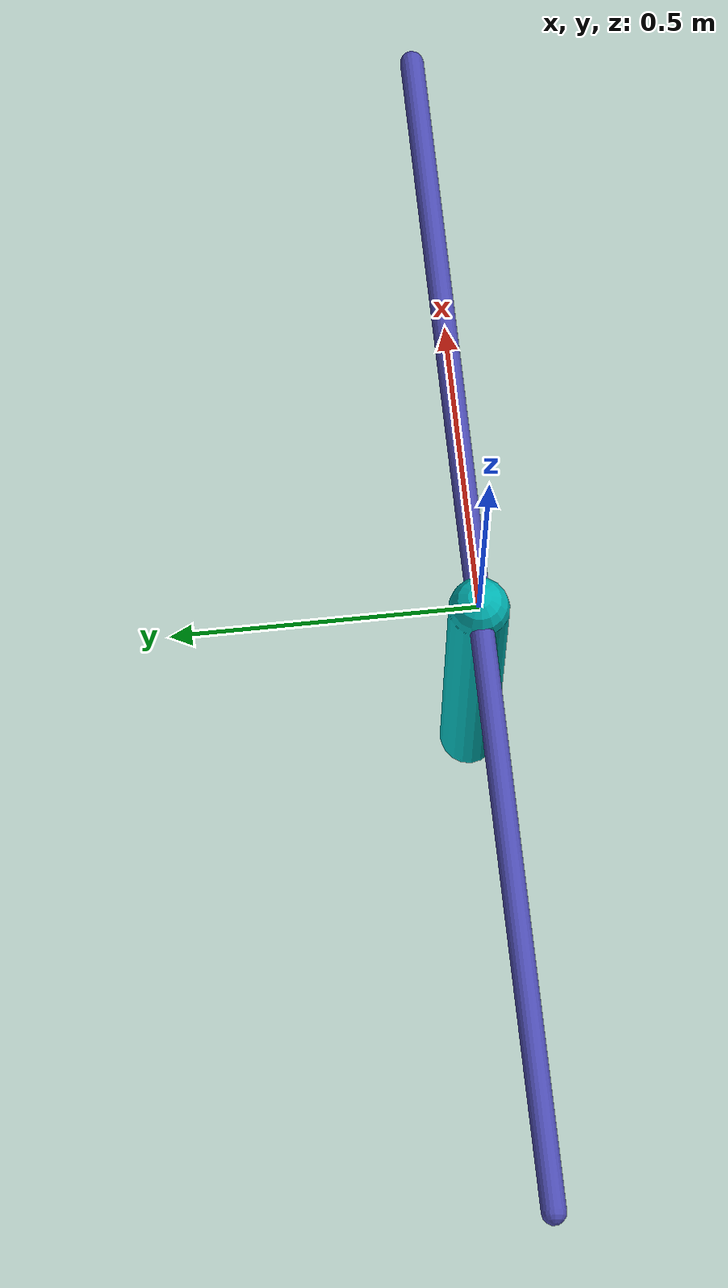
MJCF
<?xml version="1.0" encoding="utf-8"?>

<mujoco>
    <include file="practice1_shared_config.xml"/> <!--Import config-->

    <worldbody>
        <include file="practice1_base.xml"/> <!--Import kinematic chain-->
    </worldbody>

    <!--Define actuators-->
	<actuator>
        <general joint="hinge" name="hinge" ctrlrange="-6.28 6.28" dyntype="integrator" gaintype="fixed" biastype="affine" dynprm="1 0 0" gainprm="3 0 0" biasprm="0 -3 0"/>
	</actuator>
</mujoco>

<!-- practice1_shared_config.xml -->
<mujoco>
    <!--Infer masses and inertial masses from geometry-->
	<compiler inertiafromgeom="true"/>

    <!--Global defaults-->
	<default>
		<joint armature="0" damping="1" limited="true"/>
		<geom contype="0" friction="1 0.1 0.1" rgba="0.7 0.7 0 1"/>
		<tendon/>
		<motor ctrlrange="-3 3"/>
	</default>

    <!--Simulator options-->
	<option gravity="0 0 -9.81" integrator="RK4" timestep="0.02"/>
	<size nstack="3000"/>
</mujoco>

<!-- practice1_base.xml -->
<mujoco model="pendulum">
    <!--Define bodies-->
	<body>
		<geom name="bar" pos="0 0 0" quat="0.707 0 0.707 0" rgba="0.3 0.3 0.7 1" size="0.02 1" type="capsule"/>
		<body name="pole" pos="0 0 0">
			<joint axis="0 1 0" name="hinge" pos="0 0 0" limited="false" type="hinge"/>
			<geom fromto="0 0 0 0.001 0 -0.6" name="pole" rgba="0 0.7 0.7 1" size="0.05 0.3" type="capsule"/>
		</body>
	</body>
</mujoco>
